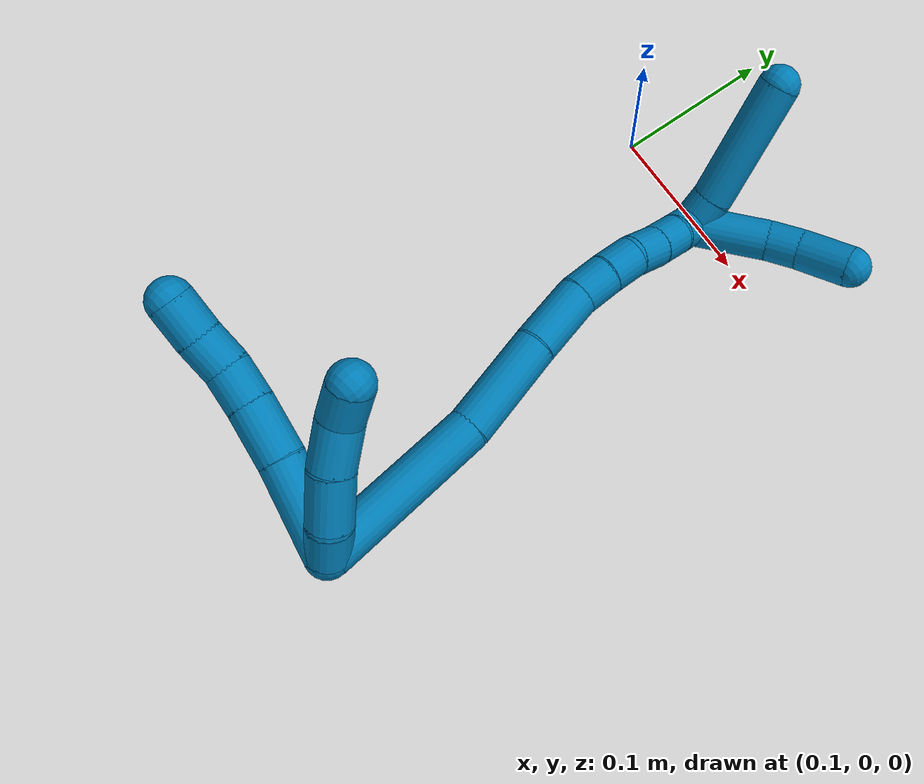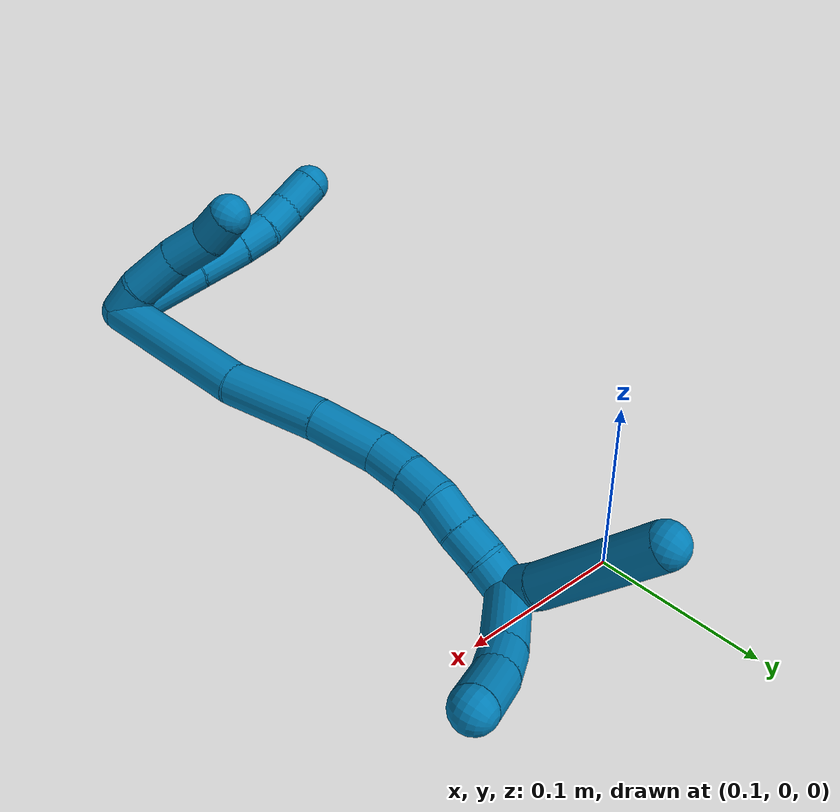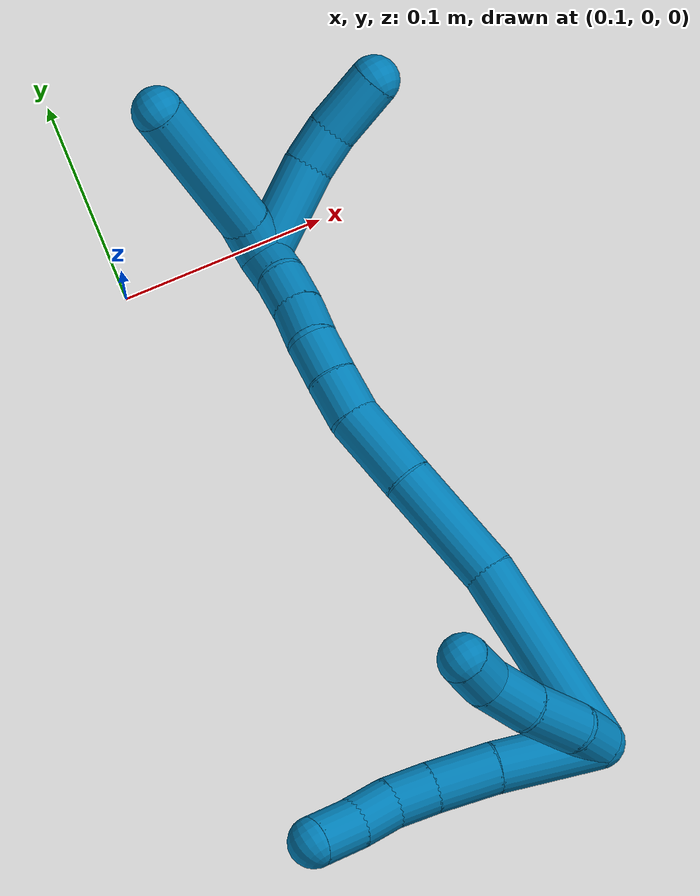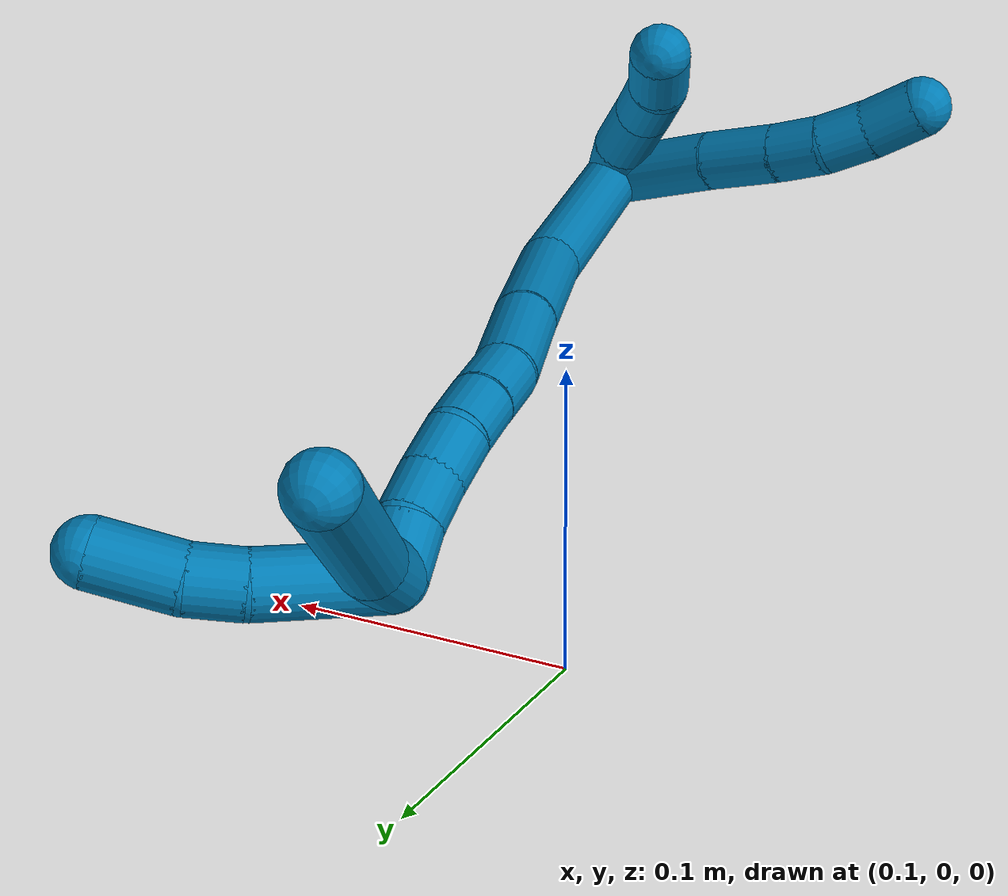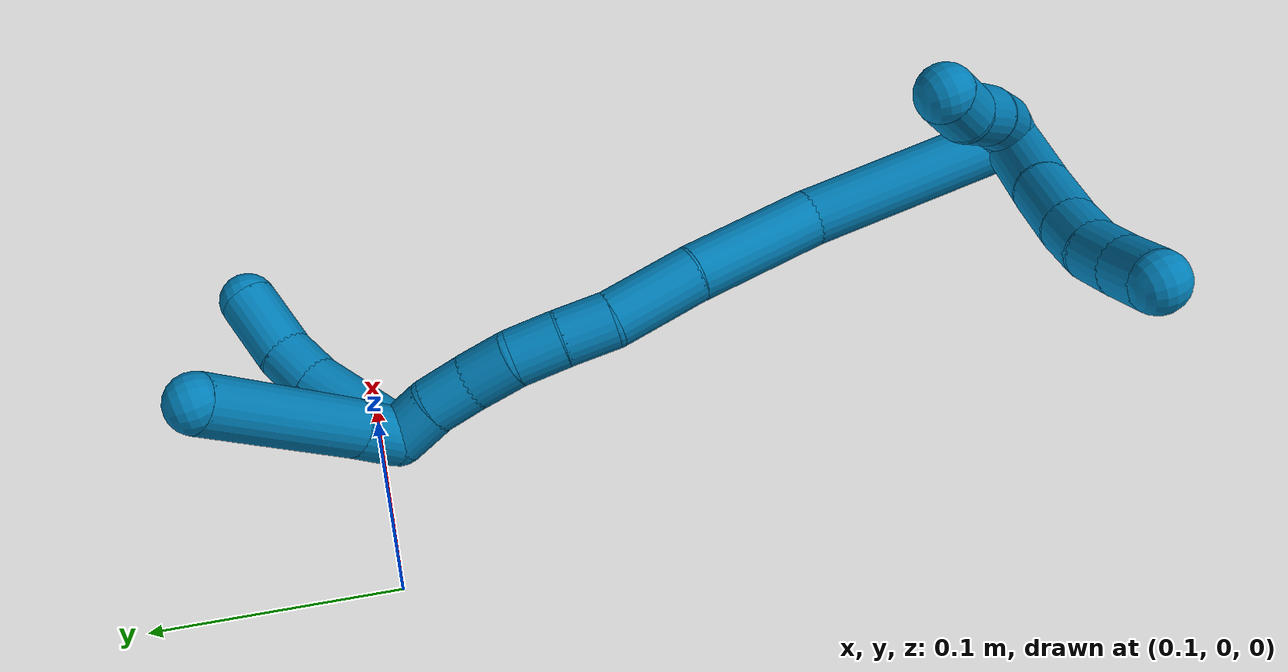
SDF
<sdf version="1.7">
 <world name="default">
  <model name="9">
   <static>0</static>
   <link name="9">
    <collision name="collision-cylinder-e_1_2_8">
     <pose>0.007499 -0.024225 -0.007145 1.85762 0.288617 0.383955</pose>
     <geometry><cylinder><radius>0.0125</radius><length>0.052693</length></cylinder></geometry>
     <surface>
      <friction><ode><mu>1.16</mu><mu2>1.16</mu2><slip1>0</slip1><slip2>0</slip2></ode></friction>
      <contact><ode><kp>1e+06</kp><kd>1</kd><max_vel>0</max_vel><min_depth>0.001</min_depth></ode></contact>
     </surface>
    </collision>
    <visual name="visual-cylinder-e_1_2_8">
     <pose>0.007499 -0.024225 -0.007145 1.85762 0.288617 0.383955</pose>
     <geometry><cylinder><radius>0.0125</radius><length>0.052693</length></cylinder></geometry>
     <material><ambient>0 0.490196 0.709804 1</ambient></material>
    </visual>
    <collision name="collision-cylinder-e_2_8_9">
     <pose>0.020476 -0.06303 -0.017746 1.80349 0.350518 0.440621</pose>
     <geometry><cylinder><radius>0.0125</radius><length>0.031908</length></cylinder></geometry>
     <surface>
      <friction><ode><mu>1.16</mu><mu2>1.16</mu2><slip1>0</slip1><slip2>0</slip2></ode></friction>
      <contact><ode><kp>1e+06</kp><kd>1</kd><max_vel>0</max_vel><min_depth>0.001</min_depth></ode></contact>
     </surface>
    </collision>
    <visual name="visual-cylinder-e_2_8_9">
     <pose>0.020476 -0.06303 -0.017746 1.80349 0.350518 0.440621</pose>
     <geometry><cylinder><radius>0.0125</radius><length>0.031908</length></cylinder></geometry>
     <material><ambient>0 0.490196 0.709804 1</ambient></material>
    </visual>
    <collision name="collision-cylinder-e_3_9_10">
     <pose>0.029262 -0.087675 -0.022915 1.73945 0.31329 0.369931</pose>
     <geometry><cylinder><radius>0.0125</radius><length>0.021464</length></cylinder></geometry>
     <surface>
      <friction><ode><mu>1.16</mu><mu2>1.16</mu2><slip1>0</slip1><slip2>0</slip2></ode></friction>
      <contact><ode><kp>1e+06</kp><kd>1</kd><max_vel>0</max_vel><min_depth>0.001</min_depth></ode></contact>
     </surface>
    </collision>
    <visual name="visual-cylinder-e_3_9_10">
     <pose>0.029262 -0.087675 -0.022915 1.73945 0.31329 0.369931</pose>
     <geometry><cylinder><radius>0.0125</radius><length>0.021464</length></cylinder></geometry>
     <material><ambient>0 0.490196 0.709804 1</ambient></material>
    </visual>
    <collision name="collision-cylinder-e_4_10_11">
     <pose>0.034904 -0.107876 -0.024464 1.5545 0.226297 0.222669</pose>
     <geometry><cylinder><radius>0.0125</radius><length>0.020807</length></cylinder></geometry>
     <surface>
      <friction><ode><mu>1.16</mu><mu2>1.16</mu2><slip1>0</slip1><slip2>0</slip2></ode></friction>
      <contact><ode><kp>1e+06</kp><kd>1</kd><max_vel>0</max_vel><min_depth>0.001</min_depth></ode></contact>
     </surface>
    </collision>
    <visual name="visual-cylinder-e_4_10_11">
     <pose>0.034904 -0.107876 -0.024464 1.5545 0.226297 0.222669</pose>
     <geometry><cylinder><radius>0.0125</radius><length>0.020807</length></cylinder></geometry>
     <material><ambient>0 0.490196 0.709804 1</ambient></material>
    </visual>
    <collision name="collision-cylinder-e_5_11_6">
     <pose>0.03858 -0.129488 -0.024803 1.61479 0.116326 0.121547</pose>
     <geometry><cylinder><radius>0.0125</radius><length>0.023128</length></cylinder></geometry>
     <surface>
      <friction><ode><mu>1.16</mu><mu2>1.16</mu2><slip1>0</slip1><slip2>0</slip2></ode></friction>
      <contact><ode><kp>1e+06</kp><kd>1</kd><max_vel>0</max_vel><min_depth>0.001</min_depth></ode></contact>
     </surface>
    </collision>
    <visual name="visual-cylinder-e_5_11_6">
     <pose>0.03858 -0.129488 -0.024803 1.61479 0.116326 0.121547</pose>
     <geometry><cylinder><radius>0.0125</radius><length>0.023128</length></cylinder></geometry>
     <material><ambient>0 0.490196 0.709804 1</ambient></material>
    </visual>
    <collision name="collision-cylinder-e_1_2_12">
     <pose>-0.005442 -0.008015 -0.004314 2.06461 -0.538852 -0.865992</pose>
     <geometry><cylinder><radius>0.0125</radius><length>0.02121</length></cylinder></geometry>
     <surface>
      <friction><ode><mu>1.16</mu><mu2>1.16</mu2><slip1>0</slip1><slip2>0</slip2></ode></friction>
      <contact><ode><kp>1e+06</kp><kd>1</kd><max_vel>0</max_vel><min_depth>0.001</min_depth></ode></contact>
     </surface>
    </collision>
    <visual name="visual-cylinder-e_1_2_12">
     <pose>-0.005442 -0.008015 -0.004314 2.06461 -0.538852 -0.865992</pose>
     <geometry><cylinder><radius>0.0125</radius><length>0.02121</length></cylinder></geometry>
     <material><ambient>0 0.490196 0.709804 1</ambient></material>
    </visual>
    <collision name="collision-cylinder-e_2_12_13">
     <pose>-0.015815 -0.028313 -0.01673 2.15386 -0.323368 -0.588355</pose>
     <geometry><cylinder><radius>0.0125</radius><length>0.031039</length></cylinder></geometry>
     <surface>
      <friction><ode><mu>1.16</mu><mu2>1.16</mu2><slip1>0</slip1><slip2>0</slip2></ode></friction>
      <contact><ode><kp>1e+06</kp><kd>1</kd><max_vel>0</max_vel><min_depth>0.001</min_depth></ode></contact>
     </surface>
    </collision>
    <visual name="visual-cylinder-e_2_12_13">
     <pose>-0.015815 -0.028313 -0.01673 2.15386 -0.323368 -0.588355</pose>
     <geometry><cylinder><radius>0.0125</radius><length>0.031039</length></cylinder></geometry>
     <material><ambient>0 0.490196 0.709804 1</ambient></material>
    </visual>
    <collision name="collision-cylinder-e_3_13_14">
     <pose>-0.024734 -0.049919 -0.033338 2.31047 -0.306032 -0.672461</pose>
     <geometry><cylinder><radius>0.0125</radius><length>0.026469</length></cylinder></geometry>
     <surface>
      <friction><ode><mu>1.16</mu><mu2>1.16</mu2><slip1>0</slip1><slip2>0</slip2></ode></friction>
      <contact><ode><kp>1e+06</kp><kd>1</kd><max_vel>0</max_vel><min_depth>0.001</min_depth></ode></contact>
     </surface>
    </collision>
    <visual name="visual-cylinder-e_3_13_14">
     <pose>-0.024734 -0.049919 -0.033338 2.31047 -0.306032 -0.672461</pose>
     <geometry><cylinder><radius>0.0125</radius><length>0.026469</length></cylinder></geometry>
     <material><ambient>0 0.490196 0.709804 1</ambient></material>
    </visual>
    <collision name="collision-cylinder-e_4_14_5">
     <pose>-0.034758 -0.065904 -0.047536 2.27775 -0.603263 -1.18746</pose>
     <geometry><cylinder><radius>0.0125</radius><length>0.021283</length></cylinder></geometry>
     <surface>
      <friction><ode><mu>1.16</mu><mu2>1.16</mu2><slip1>0</slip1><slip2>0</slip2></ode></friction>
      <contact><ode><kp>1e+06</kp><kd>1</kd><max_vel>0</max_vel><min_depth>0.001</min_depth></ode></contact>
     </surface>
    </collision>
    <visual name="visual-cylinder-e_4_14_5">
     <pose>-0.034758 -0.065904 -0.047536 2.27775 -0.603263 -1.18746</pose>
     <geometry><cylinder><radius>0.0125</radius><length>0.021283</length></cylinder></geometry>
     <material><ambient>0 0.490196 0.709804 1</ambient></material>
    </visual>
    <collision name="collision-cylinder-e_1_2_15">
     <pose>0.000263 0.001576 -0.048333 -3.109 0.005434 -0.330356</pose>
     <geometry><cylinder><radius>0.0125</radius><length>0.096719</length></cylinder></geometry>
     <surface>
      <friction><ode><mu>1.16</mu><mu2>1.16</mu2><slip1>0</slip1><slip2>0</slip2></ode></friction>
      <contact><ode><kp>1e+06</kp><kd>1</kd><max_vel>0</max_vel><min_depth>0.001</min_depth></ode></contact>
     </surface>
    </collision>
    <visual name="visual-cylinder-e_1_2_15">
     <pose>0.000263 0.001576 -0.048333 -3.109 0.005434 -0.330356</pose>
     <geometry><cylinder><radius>0.0125</radius><length>0.096719</length></cylinder></geometry>
     <material><ambient>0 0.490196 0.709804 1</ambient></material>
    </visual>
    <collision name="collision-cylinder-e_2_15_16">
     <pose>0.001555 -0.000615 -0.125723 3.01267 0.035131 0.531412</pose>
     <geometry><cylinder><radius>0.0125</radius><length>0.058635</length></cylinder></geometry>
     <surface>
      <friction><ode><mu>1.16</mu><mu2>1.16</mu2><slip1>0</slip1><slip2>0</slip2></ode></friction>
      <contact><ode><kp>1e+06</kp><kd>1</kd><max_vel>0</max_vel><min_depth>0.001</min_depth></ode></contact>
     </surface>
    </collision>
    <visual name="visual-cylinder-e_2_15_16">
     <pose>0.001555 -0.000615 -0.125723 3.01267 0.035131 0.531412</pose>
     <geometry><cylinder><radius>0.0125</radius><length>0.058635</length></cylinder></geometry>
     <material><ambient>0 0.490196 0.709804 1</ambient></material>
    </visual>
    <collision name="collision-cylinder-e_3_16_17">
     <pose>0.00487 -0.005484 -0.174711 3.08637 0.113965 2.23981</pose>
     <geometry><cylinder><radius>0.0125</radius><length>0.040185</length></cylinder></geometry>
     <surface>
      <friction><ode><mu>1.16</mu><mu2>1.16</mu2><slip1>0</slip1><slip2>0</slip2></ode></friction>
      <contact><ode><kp>1e+06</kp><kd>1</kd><max_vel>0</max_vel><min_depth>0.001</min_depth></ode></contact>
     </surface>
    </collision>
    <visual name="visual-cylinder-e_3_16_17">
     <pose>0.00487 -0.005484 -0.174711 3.08637 0.113965 2.23981</pose>
     <geometry><cylinder><radius>0.0125</radius><length>0.040185</length></cylinder></geometry>
     <material><ambient>0 0.490196 0.709804 1</ambient></material>
    </visual>
    <collision name="collision-cylinder-e_4_17_18">
     <pose>0.007081 -0.005519 -0.205783 -3.04617 -0.006586 0.13772</pose>
     <geometry><cylinder><radius>0.0125</radius><length>0.022384</length></cylinder></geometry>
     <surface>
      <friction><ode><mu>1.16</mu><mu2>1.16</mu2><slip1>0</slip1><slip2>0</slip2></ode></friction>
      <contact><ode><kp>1e+06</kp><kd>1</kd><max_vel>0</max_vel><min_depth>0.001</min_depth></ode></contact>
     </surface>
    </collision>
    <visual name="visual-cylinder-e_4_17_18">
     <pose>0.007081 -0.005519 -0.205783 -3.04617 -0.006586 0.13772</pose>
     <geometry><cylinder><radius>0.0125</radius><length>0.022384</length></cylinder></geometry>
     <material><ambient>0 0.490196 0.709804 1</ambient></material>
    </visual>
    <collision name="collision-cylinder-e_5_18_19">
     <pose>0.007464 -0.002717 -0.227373 -2.97698 0.043068 -0.510755</pose>
     <geometry><cylinder><radius>0.0125</radius><length>0.021205</length></cylinder></geometry>
     <surface>
      <friction><ode><mu>1.16</mu><mu2>1.16</mu2><slip1>0</slip1><slip2>0</slip2></ode></friction>
      <contact><ode><kp>1e+06</kp><kd>1</kd><max_vel>0</max_vel><min_depth>0.001</min_depth></ode></contact>
     </surface>
    </collision>
    <visual name="visual-cylinder-e_5_18_19">
     <pose>0.007464 -0.002717 -0.227373 -2.97698 0.043068 -0.510755</pose>
     <geometry><cylinder><radius>0.0125</radius><length>0.021205</length></cylinder></geometry>
     <material><ambient>0 0.490196 0.709804 1</ambient></material>
    </visual>
    <collision name="collision-cylinder-e_6_19_20">
     <pose>0.009996 0.002666 -0.247195 -2.77049 0.203546 -0.996553</pose>
     <geometry><cylinder><radius>0.0125</radius><length>0.020538</length></cylinder></geometry>
     <surface>
      <friction><ode><mu>1.16</mu><mu2>1.16</mu2><slip1>0</slip1><slip2>0</slip2></ode></friction>
      <contact><ode><kp>1e+06</kp><kd>1</kd><max_vel>0</max_vel><min_depth>0.001</min_depth></ode></contact>
     </surface>
    </collision>
    <visual name="visual-cylinder-e_6_19_20">
     <pose>0.009996 0.002666 -0.247195 -2.77049 0.203546 -0.996553</pose>
     <geometry><cylinder><radius>0.0125</radius><length>0.020538</length></cylinder></geometry>
     <material><ambient>0 0.490196 0.709804 1</ambient></material>
    </visual>
    <collision name="collision-cylinder-e_7_20_21">
     <pose>0.014356 0.009049 -0.265944 -2.85769 0.229696 -1.35821</pose>
     <geometry><cylinder><radius>0.0125</radius><length>0.020063</length></cylinder></geometry>
     <surface>
      <friction><ode><mu>1.16</mu><mu2>1.16</mu2><slip1>0</slip1><slip2>0</slip2></ode></friction>
      <contact><ode><kp>1e+06</kp><kd>1</kd><max_vel>0</max_vel><min_depth>0.001</min_depth></ode></contact>
     </surface>
    </collision>
    <visual name="visual-cylinder-e_7_20_21">
     <pose>0.014356 0.009049 -0.265944 -2.85769 0.229696 -1.35821</pose>
     <geometry><cylinder><radius>0.0125</radius><length>0.020063</length></cylinder></geometry>
     <material><ambient>0 0.490196 0.709804 1</ambient></material>
    </visual>
    <collision name="collision-cylinder-e_8_21_1">
     <pose>0.020721 0.014906 -0.284058 -2.79847 0.414428 -1.76298</pose>
     <geometry><cylinder><radius>0.0125</radius><length>0.020272</length></cylinder></geometry>
     <surface>
      <friction><ode><mu>1.16</mu><mu2>1.16</mu2><slip1>0</slip1><slip2>0</slip2></ode></friction>
      <contact><ode><kp>1e+06</kp><kd>1</kd><max_vel>0</max_vel><min_depth>0.001</min_depth></ode></contact>
     </surface>
    </collision>
    <visual name="visual-cylinder-e_8_21_1">
     <pose>0.020721 0.014906 -0.284058 -2.79847 0.414428 -1.76298</pose>
     <geometry><cylinder><radius>0.0125</radius><length>0.020272</length></cylinder></geometry>
     <material><ambient>0 0.490196 0.709804 1</ambient></material>
    </visual>
    <collision name="collision-cylinder-e_1_1_22">
     <pose>0.018559 0.013752 -0.300682 2.64478 -0.607962 -1.78173</pose>
     <geometry><cylinder><radius>0.0125</radius><length>0.021861</length></cylinder></geometry>
     <surface>
      <friction><ode><mu>1.16</mu><mu2>1.16</mu2><slip1>0</slip1><slip2>0</slip2></ode></friction>
      <contact><ode><kp>1e+06</kp><kd>1</kd><max_vel>0</max_vel><min_depth>0.001</min_depth></ode></contact>
     </surface>
    </collision>
    <visual name="visual-cylinder-e_1_1_22">
     <pose>0.018559 0.013752 -0.300682 2.64478 -0.607962 -1.78173</pose>
     <geometry><cylinder><radius>0.0125</radius><length>0.021861</length></cylinder></geometry>
     <material><ambient>0 0.490196 0.709804 1</ambient></material>
    </visual>
    <collision name="collision-cylinder-e_2_22_4">
     <pose>-0.008402 -0.011017 -0.334594 2.47457 -0.558926 -1.38355</pose>
     <geometry><cylinder><radius>0.0125</radius><length>0.078139</length></cylinder></geometry>
     <surface>
      <friction><ode><mu>1.16</mu><mu2>1.16</mu2><slip1>0</slip1><slip2>0</slip2></ode></friction>
      <contact><ode><kp>1e+06</kp><kd>1</kd><max_vel>0</max_vel><min_depth>0.001</min_depth></ode></contact>
     </surface>
    </collision>
    <visual name="visual-cylinder-e_2_22_4">
     <pose>-0.008402 -0.011017 -0.334594 2.47457 -0.558926 -1.38355</pose>
     <geometry><cylinder><radius>0.0125</radius><length>0.078139</length></cylinder></geometry>
     <material><ambient>0 0.490196 0.709804 1</ambient></material>
    </visual>
    <collision name="collision-cylinder-e_1_1_23">
     <pose>0.010456 0.033121 -0.304506 -2.23066 -0.644117 1.19603</pose>
     <geometry><cylinder><radius>0.0125</radius><length>0.047782</length></cylinder></geometry>
     <surface>
      <friction><ode><mu>1.16</mu><mu2>1.16</mu2><slip1>0</slip1><slip2>0</slip2></ode></friction>
      <contact><ode><kp>1e+06</kp><kd>1</kd><max_vel>0</max_vel><min_depth>0.001</min_depth></ode></contact>
     </surface>
    </collision>
    <visual name="visual-cylinder-e_1_1_23">
     <pose>0.010456 0.033121 -0.304506 -2.23066 -0.644117 1.19603</pose>
     <geometry><cylinder><radius>0.0125</radius><length>0.047782</length></cylinder></geometry>
     <material><ambient>0 0.490196 0.709804 1</ambient></material>
    </visual>
    <collision name="collision-cylinder-e_2_23_24">
     <pose>-0.010995 0.054553 -0.31984 -2.09016 -0.771775 1.22176</pose>
     <geometry><cylinder><radius>0.0125</radius><length>0.020376</length></cylinder></geometry>
     <surface>
      <friction><ode><mu>1.16</mu><mu2>1.16</mu2><slip1>0</slip1><slip2>0</slip2></ode></friction>
      <contact><ode><kp>1e+06</kp><kd>1</kd><max_vel>0</max_vel><min_depth>0.001</min_depth></ode></contact>
     </surface>
    </collision>
    <visual name="visual-cylinder-e_2_23_24">
     <pose>-0.010995 0.054553 -0.31984 -2.09016 -0.771775 1.22176</pose>
     <geometry><cylinder><radius>0.0125</radius><length>0.020376</length></cylinder></geometry>
     <material><ambient>0 0.490196 0.709804 1</ambient></material>
    </visual>
    <collision name="collision-cylinder-e_3_24_3">
     <pose>-0.030778 0.069937 -0.326775 -1.92172 -0.921085 1.23473</pose>
     <geometry><cylinder><radius>0.0125</radius><length>0.031843</length></cylinder></geometry>
     <surface>
      <friction><ode><mu>1.16</mu><mu2>1.16</mu2><slip1>0</slip1><slip2>0</slip2></ode></friction>
      <contact><ode><kp>1e+06</kp><kd>1</kd><max_vel>0</max_vel><min_depth>0.001</min_depth></ode></contact>
     </surface>
    </collision>
    <visual name="visual-cylinder-e_3_24_3">
     <pose>-0.030778 0.069937 -0.326775 -1.92172 -0.921085 1.23473</pose>
     <geometry><cylinder><radius>0.0125</radius><length>0.031843</length></cylinder></geometry>
     <material><ambient>0 0.490196 0.709804 1</ambient></material>
    </visual>
    <collision name="collision-sphere-3">
     <pose>-0.043455 0.078981 -0.330086 0 -0 0</pose>
     <geometry><sphere><radius>0.0125</radius></sphere></geometry>
     <surface>
      <friction><ode><mu>1.16</mu><mu2>1.16</mu2><slip1>0</slip1><slip2>0</slip2></ode></friction>
      <contact><ode><kp>1e+06</kp><kd>1</kd><max_vel>0</max_vel><min_depth>0.001</min_depth></ode></contact>
     </surface>
    </collision>
    <visual name="visual-sphere-3">
     <pose>-0.043455 0.078981 -0.330086 0 -0 0</pose>
     <geometry><sphere><radius>0.0125</radius></sphere></geometry>
     <material><ambient>0 0.490196 0.709804 1</ambient></material>
    </visual>
    <collision name="collision-sphere-24">
     <pose>-0.0181 0.060892 -0.323464 0 -0 0</pose>
     <geometry><sphere><radius>0.0125</radius></sphere></geometry>
     <surface>
      <friction><ode><mu>1.16</mu><mu2>1.16</mu2><slip1>0</slip1><slip2>0</slip2></ode></friction>
      <contact><ode><kp>1e+06</kp><kd>1</kd><max_vel>0</max_vel><min_depth>0.001</min_depth></ode></contact>
     </surface>
    </collision>
    <visual name="visual-sphere-24">
     <pose>-0.0181 0.060892 -0.323464 0 -0 0</pose>
     <geometry><sphere><radius>0.0125</radius></sphere></geometry>
     <material><ambient>0 0.490196 0.709804 1</ambient></material>
    </visual>
    <collision name="collision-sphere-23">
     <pose>-0.00389 0.048215 -0.316217 0 -0 0</pose>
     <geometry><sphere><radius>0.0125</radius></sphere></geometry>
     <surface>
      <friction><ode><mu>1.16</mu><mu2>1.16</mu2><slip1>0</slip1><slip2>0</slip2></ode></friction>
      <contact><ode><kp>1e+06</kp><kd>1</kd><max_vel>0</max_vel><min_depth>0.001</min_depth></ode></contact>
     </surface>
    </collision>
    <visual name="visual-sphere-23">
     <pose>-0.00389 0.048215 -0.316217 0 -0 0</pose>
     <geometry><sphere><radius>0.0125</radius></sphere></geometry>
     <material><ambient>0 0.490196 0.709804 1</ambient></material>
    </visual>
    <collision name="collision-sphere-4">
     <pose>-0.02912 -0.031509 -0.360619 0 -0 0</pose>
     <geometry><sphere><radius>0.0125</radius></sphere></geometry>
     <surface>
      <friction><ode><mu>1.16</mu><mu2>1.16</mu2><slip1>0</slip1><slip2>0</slip2></ode></friction>
      <contact><ode><kp>1e+06</kp><kd>1</kd><max_vel>0</max_vel><min_depth>0.001</min_depth></ode></contact>
     </surface>
    </collision>
    <visual name="visual-sphere-4">
     <pose>-0.02912 -0.031509 -0.360619 0 -0 0</pose>
     <geometry><sphere><radius>0.0125</radius></sphere></geometry>
     <material><ambient>0 0.490196 0.709804 1</ambient></material>
    </visual>
    <collision name="collision-sphere-22">
     <pose>0.012316 0.009476 -0.308569 0 -0 0</pose>
     <geometry><sphere><radius>0.0125</radius></sphere></geometry>
     <surface>
      <friction><ode><mu>1.16</mu><mu2>1.16</mu2><slip1>0</slip1><slip2>0</slip2></ode></friction>
      <contact><ode><kp>1e+06</kp><kd>1</kd><max_vel>0</max_vel><min_depth>0.001</min_depth></ode></contact>
     </surface>
    </collision>
    <visual name="visual-sphere-22">
     <pose>0.012316 0.009476 -0.308569 0 -0 0</pose>
     <geometry><sphere><radius>0.0125</radius></sphere></geometry>
     <material><ambient>0 0.490196 0.709804 1</ambient></material>
    </visual>
    <collision name="collision-sphere-1">
     <pose>0.024803 0.018028 -0.292795 0 -0 0</pose>
     <geometry><sphere><radius>0.0125</radius></sphere></geometry>
     <surface>
      <friction><ode><mu>1.16</mu><mu2>1.16</mu2><slip1>0</slip1><slip2>0</slip2></ode></friction>
      <contact><ode><kp>1e+06</kp><kd>1</kd><max_vel>0</max_vel><min_depth>0.001</min_depth></ode></contact>
     </surface>
    </collision>
    <visual name="visual-sphere-1">
     <pose>0.024803 0.018028 -0.292795 0 -0 0</pose>
     <geometry><sphere><radius>0.0125</radius></sphere></geometry>
     <material><ambient>0 0.490196 0.709804 1</ambient></material>
    </visual>
    <collision name="collision-sphere-21">
     <pose>0.01664 0.011785 -0.275321 0 -0 0</pose>
     <geometry><sphere><radius>0.0125</radius></sphere></geometry>
     <surface>
      <friction><ode><mu>1.16</mu><mu2>1.16</mu2><slip1>0</slip1><slip2>0</slip2></ode></friction>
      <contact><ode><kp>1e+06</kp><kd>1</kd><max_vel>0</max_vel><min_depth>0.001</min_depth></ode></contact>
     </surface>
    </collision>
    <visual name="visual-sphere-21">
     <pose>0.01664 0.011785 -0.275321 0 -0 0</pose>
     <geometry><sphere><radius>0.0125</radius></sphere></geometry>
     <material><ambient>0 0.490196 0.709804 1</ambient></material>
    </visual>
    <collision name="collision-sphere-6">
     <pose>0.039922 -0.140963 -0.025309 0 -0 0</pose>
     <geometry><sphere><radius>0.0125</radius></sphere></geometry>
     <surface>
      <friction><ode><mu>1.16</mu><mu2>1.16</mu2><slip1>0</slip1><slip2>0</slip2></ode></friction>
      <contact><ode><kp>1e+06</kp><kd>1</kd><max_vel>0</max_vel><min_depth>0.001</min_depth></ode></contact>
     </surface>
    </collision>
    <visual name="visual-sphere-6">
     <pose>0.039922 -0.140963 -0.025309 0 -0 0</pose>
     <geometry><sphere><radius>0.0125</radius></sphere></geometry>
     <material><ambient>0 0.490196 0.709804 1</ambient></material>
    </visual>
    <collision name="collision-sphere-11">
     <pose>0.037238 -0.118013 -0.024298 0 -0 0</pose>
     <geometry><sphere><radius>0.0125</radius></sphere></geometry>
     <surface>
      <friction><ode><mu>1.16</mu><mu2>1.16</mu2><slip1>0</slip1><slip2>0</slip2></ode></friction>
      <contact><ode><kp>1e+06</kp><kd>1</kd><max_vel>0</max_vel><min_depth>0.001</min_depth></ode></contact>
     </surface>
    </collision>
    <visual name="visual-sphere-11">
     <pose>0.037238 -0.118013 -0.024298 0 -0 0</pose>
     <geometry><sphere><radius>0.0125</radius></sphere></geometry>
     <material><ambient>0 0.490196 0.709804 1</ambient></material>
    </visual>
    <collision name="collision-sphere-10">
     <pose>0.032569 -0.097739 -0.024629 0 -0 0</pose>
     <geometry><sphere><radius>0.0125</radius></sphere></geometry>
     <surface>
      <friction><ode><mu>1.16</mu><mu2>1.16</mu2><slip1>0</slip1><slip2>0</slip2></ode></friction>
      <contact><ode><kp>1e+06</kp><kd>1</kd><max_vel>0</max_vel><min_depth>0.001</min_depth></ode></contact>
     </surface>
    </collision>
    <visual name="visual-sphere-10">
     <pose>0.032569 -0.097739 -0.024629 0 -0 0</pose>
     <geometry><sphere><radius>0.0125</radius></sphere></geometry>
     <material><ambient>0 0.490196 0.709804 1</ambient></material>
    </visual>
    <collision name="collision-sphere-9">
     <pose>0.025954 -0.07761 -0.021201 0 -0 0</pose>
     <geometry><sphere><radius>0.0125</radius></sphere></geometry>
     <surface>
      <friction><ode><mu>1.16</mu><mu2>1.16</mu2><slip1>0</slip1><slip2>0</slip2></ode></friction>
      <contact><ode><kp>1e+06</kp><kd>1</kd><max_vel>0</max_vel><min_depth>0.001</min_depth></ode></contact>
     </surface>
    </collision>
    <visual name="visual-sphere-9">
     <pose>0.025954 -0.07761 -0.021201 0 -0 0</pose>
     <geometry><sphere><radius>0.0125</radius></sphere></geometry>
     <material><ambient>0 0.490196 0.709804 1</ambient></material>
    </visual>
    <collision name="collision-sphere-2">
     <geometry><sphere><radius>0.0125</radius></sphere></geometry>
     <surface>
      <friction><ode><mu>1.16</mu><mu2>1.16</mu2><slip1>0</slip1><slip2>0</slip2></ode></friction>
      <contact><ode><kp>1e+06</kp><kd>1</kd><max_vel>0</max_vel><min_depth>0.001</min_depth></ode></contact>
     </surface>
    </collision>
    <visual name="visual-sphere-2">
     <geometry><sphere><radius>0.0125</radius></sphere></geometry>
     <material><ambient>0 0.490196 0.709804 1</ambient></material>
    </visual>
    <collision name="collision-sphere-19">
     <pose>0.00792 -0.000981 -0.237822 0 -0 0</pose>
     <geometry><sphere><radius>0.0125</radius></sphere></geometry>
     <surface>
      <friction><ode><mu>1.16</mu><mu2>1.16</mu2><slip1>0</slip1><slip2>0</slip2></ode></friction>
      <contact><ode><kp>1e+06</kp><kd>1</kd><max_vel>0</max_vel><min_depth>0.001</min_depth></ode></contact>
     </surface>
    </collision>
    <visual name="visual-sphere-19">
     <pose>0.00792 -0.000981 -0.237822 0 -0 0</pose>
     <geometry><sphere><radius>0.0125</radius></sphere></geometry>
     <material><ambient>0 0.490196 0.709804 1</ambient></material>
    </visual>
    <collision name="collision-sphere-8">
     <pose>0.014998 -0.048449 -0.014291 0 -0 0</pose>
     <geometry><sphere><radius>0.0125</radius></sphere></geometry>
     <surface>
      <friction><ode><mu>1.16</mu><mu2>1.16</mu2><slip1>0</slip1><slip2>0</slip2></ode></friction>
      <contact><ode><kp>1e+06</kp><kd>1</kd><max_vel>0</max_vel><min_depth>0.001</min_depth></ode></contact>
     </surface>
    </collision>
    <visual name="visual-sphere-8">
     <pose>0.014998 -0.048449 -0.014291 0 -0 0</pose>
     <geometry><sphere><radius>0.0125</radius></sphere></geometry>
     <material><ambient>0 0.490196 0.709804 1</ambient></material>
    </visual>
    <collision name="collision-sphere-12">
     <pose>-0.010884 -0.016029 -0.008629 0 -0 0</pose>
     <geometry><sphere><radius>0.0125</radius></sphere></geometry>
     <surface>
      <friction><ode><mu>1.16</mu><mu2>1.16</mu2><slip1>0</slip1><slip2>0</slip2></ode></friction>
      <contact><ode><kp>1e+06</kp><kd>1</kd><max_vel>0</max_vel><min_depth>0.001</min_depth></ode></contact>
     </surface>
    </collision>
    <visual name="visual-sphere-12">
     <pose>-0.010884 -0.016029 -0.008629 0 -0 0</pose>
     <geometry><sphere><radius>0.0125</radius></sphere></geometry>
     <material><ambient>0 0.490196 0.709804 1</ambient></material>
    </visual>
    <collision name="collision-sphere-13">
     <pose>-0.020747 -0.040597 -0.024832 0 -0 0</pose>
     <geometry><sphere><radius>0.0125</radius></sphere></geometry>
     <surface>
      <friction><ode><mu>1.16</mu><mu2>1.16</mu2><slip1>0</slip1><slip2>0</slip2></ode></friction>
      <contact><ode><kp>1e+06</kp><kd>1</kd><max_vel>0</max_vel><min_depth>0.001</min_depth></ode></contact>
     </surface>
    </collision>
    <visual name="visual-sphere-13">
     <pose>-0.020747 -0.040597 -0.024832 0 -0 0</pose>
     <geometry><sphere><radius>0.0125</radius></sphere></geometry>
     <material><ambient>0 0.490196 0.709804 1</ambient></material>
    </visual>
    <collision name="collision-sphere-14">
     <pose>-0.028721 -0.059241 -0.041845 0 -0 0</pose>
     <geometry><sphere><radius>0.0125</radius></sphere></geometry>
     <surface>
      <friction><ode><mu>1.16</mu><mu2>1.16</mu2><slip1>0</slip1><slip2>0</slip2></ode></friction>
      <contact><ode><kp>1e+06</kp><kd>1</kd><max_vel>0</max_vel><min_depth>0.001</min_depth></ode></contact>
     </surface>
    </collision>
    <visual name="visual-sphere-14">
     <pose>-0.028721 -0.059241 -0.041845 0 -0 0</pose>
     <geometry><sphere><radius>0.0125</radius></sphere></geometry>
     <material><ambient>0 0.490196 0.709804 1</ambient></material>
    </visual>
    <collision name="collision-sphere-5">
     <pose>-0.040795 -0.072567 -0.053228 0 -0 0</pose>
     <geometry><sphere><radius>0.0125</radius></sphere></geometry>
     <surface>
      <friction><ode><mu>1.16</mu><mu2>1.16</mu2><slip1>0</slip1><slip2>0</slip2></ode></friction>
      <contact><ode><kp>1e+06</kp><kd>1</kd><max_vel>0</max_vel><min_depth>0.001</min_depth></ode></contact>
     </surface>
    </collision>
    <visual name="visual-sphere-5">
     <pose>-0.040795 -0.072567 -0.053228 0 -0 0</pose>
     <geometry><sphere><radius>0.0125</radius></sphere></geometry>
     <material><ambient>0 0.490196 0.709804 1</ambient></material>
    </visual>
    <collision name="collision-sphere-15">
     <pose>0.000526 0.003152 -0.096667 0 -0 0</pose>
     <geometry><sphere><radius>0.0125</radius></sphere></geometry>
     <surface>
      <friction><ode><mu>1.16</mu><mu2>1.16</mu2><slip1>0</slip1><slip2>0</slip2></ode></friction>
      <contact><ode><kp>1e+06</kp><kd>1</kd><max_vel>0</max_vel><min_depth>0.001</min_depth></ode></contact>
     </surface>
    </collision>
    <visual name="visual-sphere-15">
     <pose>0.000526 0.003152 -0.096667 0 -0 0</pose>
     <geometry><sphere><radius>0.0125</radius></sphere></geometry>
     <material><ambient>0 0.490196 0.709804 1</ambient></material>
    </visual>
    <collision name="collision-sphere-16">
     <pose>0.002585 -0.004382 -0.154779 0 -0 0</pose>
     <geometry><sphere><radius>0.0125</radius></sphere></geometry>
     <surface>
      <friction><ode><mu>1.16</mu><mu2>1.16</mu2><slip1>0</slip1><slip2>0</slip2></ode></friction>
      <contact><ode><kp>1e+06</kp><kd>1</kd><max_vel>0</max_vel><min_depth>0.001</min_depth></ode></contact>
     </surface>
    </collision>
    <visual name="visual-sphere-16">
     <pose>0.002585 -0.004382 -0.154779 0 -0 0</pose>
     <geometry><sphere><radius>0.0125</radius></sphere></geometry>
     <material><ambient>0 0.490196 0.709804 1</ambient></material>
    </visual>
    <collision name="collision-sphere-17">
     <pose>0.007155 -0.006585 -0.194643 0 -0 0</pose>
     <geometry><sphere><radius>0.0125</radius></sphere></geometry>
     <surface>
      <friction><ode><mu>1.16</mu><mu2>1.16</mu2><slip1>0</slip1><slip2>0</slip2></ode></friction>
      <contact><ode><kp>1e+06</kp><kd>1</kd><max_vel>0</max_vel><min_depth>0.001</min_depth></ode></contact>
     </surface>
    </collision>
    <visual name="visual-sphere-17">
     <pose>0.007155 -0.006585 -0.194643 0 -0 0</pose>
     <geometry><sphere><radius>0.0125</radius></sphere></geometry>
     <material><ambient>0 0.490196 0.709804 1</ambient></material>
    </visual>
    <collision name="collision-sphere-18">
     <pose>0.007007 -0.004453 -0.216924 0 -0 0</pose>
     <geometry><sphere><radius>0.0125</radius></sphere></geometry>
     <surface>
      <friction><ode><mu>1.16</mu><mu2>1.16</mu2><slip1>0</slip1><slip2>0</slip2></ode></friction>
      <contact><ode><kp>1e+06</kp><kd>1</kd><max_vel>0</max_vel><min_depth>0.001</min_depth></ode></contact>
     </surface>
    </collision>
    <visual name="visual-sphere-18">
     <pose>0.007007 -0.004453 -0.216924 0 -0 0</pose>
     <geometry><sphere><radius>0.0125</radius></sphere></geometry>
     <material><ambient>0 0.490196 0.709804 1</ambient></material>
    </visual>
    <collision name="collision-sphere-20">
     <pose>0.012072 0.006313 -0.256567 0 -0 0</pose>
     <geometry><sphere><radius>0.0125</radius></sphere></geometry>
     <surface>
      <friction><ode><mu>1.16</mu><mu2>1.16</mu2><slip1>0</slip1><slip2>0</slip2></ode></friction>
      <contact><ode><kp>1e+06</kp><kd>1</kd><max_vel>0</max_vel><min_depth>0.001</min_depth></ode></contact>
     </surface>
    </collision>
    <visual name="visual-sphere-20">
     <pose>0.012072 0.006313 -0.256567 0 -0 0</pose>
     <geometry><sphere><radius>0.0125</radius></sphere></geometry>
     <material><ambient>0 0.490196 0.709804 1</ambient></material>
    </visual>
    <inertial>
     <pose>0.002509 -0.012756 -0.151837 0 -0 0</pose>
     <mass>0.75</mass>
     <inertia>
      <ixx>8.3e-05</ixx>
      <ixy>0</ixy>
      <ixz>0</ixz>
      <iyy>-0.000134</iyy>
      <iyz>0</iyz>
      <izz>3.1e-05</izz>
     </inertia>
    </inertial>
   </link>
   <pose>0.221849 -0.288154 0.084652 -1.33875 0.936539 -2.76416</pose>
  </model>
 </world>
</sdf>
